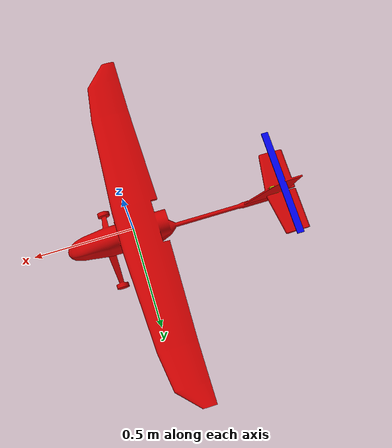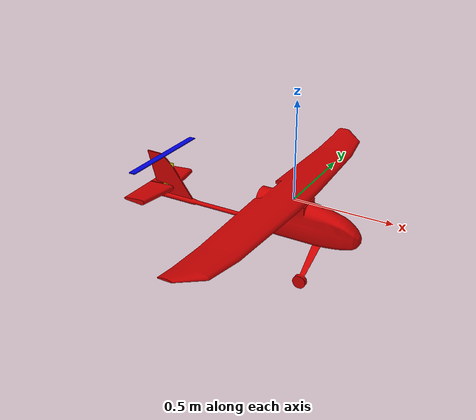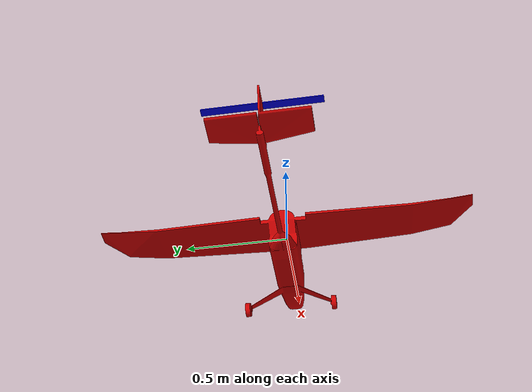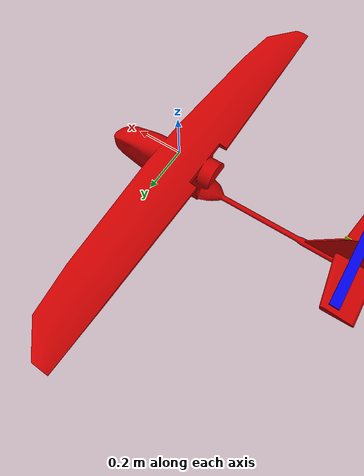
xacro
<?xml version="1.0" encoding="UTF-8"?>
<robot xmlns:xacro="http://www.ros.org/wiki/xacro"
  name="rarog">

  <!-- NOTE: xacro dont care about encoding, non ascii cause an error -->

  <!-- in Jade math.pi predefined -->
  <xacro:property name="add_control_surfaces" value="true" />
  <xacro:property name="kgcm_to_nm" value="0.0980665" />

  <link name="base_link">
    <!-- Robot base link: near CoG -->

    <visual>
      <origin xyz="0 0 -0.13" rpy="${pi} 0 0" />
      <geometry>
        <!-- XXX TODO Rarog uses Skywalker V6 1900, need to find right model -->
        <mesh filename="package://rarog_description/meshes/skywalker_2013.dae"/>
      </geometry>
      <material name="red"> <!-- GOES FASTA! -->
        <color rgba=".8 0 0 1" />
      </material>
    </visual>
  </link>

  <link name="fcu">
    <!-- FCU frame (mavros uses this link for most topics) -->
    <visual>
      <geometry>
        <box size=".085 .052 .02" />
      </geometry>
      <material name="dark-grey">
        <color rgba=".2 .2 .2 1" />
      </material>
    </visual>
  </link>

  <joint name="base_to_fcu" type="fixed">
    <parent link="base_link" />
    <child link="fcu" />
    <!-- FCU located under wing, on symmetry line,
         +5 cm X, -3 cm Y from base_link
         -->
    <origin xyz="0.05 0 -0.03" rpy="0 0 0" />
  </joint>

  <xacro:macro name="common_servo_limit">
      <!-- Lets say 30 deg, servo: 1.5 kg*cm (6 volt), 60 deg in 0.10 sec -->
      <limit lower="${radians(-30)}" upper="${radians(30)}" effort="${1.5 * kgcm_to_nm}" velocity="${radians(60. / 0.10)}" />
  </xacro:macro>

  <xacro:macro name="aileron" params="link *material *origin *mimic">
    <link name="${link}">
      <visual>
        <geometry>
          <!-- Aileron trapeze: 6 - 24.5 - 5 cm -->
          <box size=".055 .245 .005" />
        </geometry>
        <xacro:insert_block name="material" />
        <origin xyz="${-0.055/2} 0 0" rpy="0 0 0" />
      </visual>
    </link>

    <joint name="${link}" type="revolute">
      <parent link="base_link" />
      <child link="${link}" />
      <xacro:insert_block name="origin" />
      <axis xyz="0 1 0" />
      <xacro:common_servo_limit />
      <xacro:insert_block name="mimic" />
    </joint>
  </xacro:macro>

  <xacro:if value="${add_control_surfaces}">

    <!-- conventional ailerons controlled by one axis -->
    <link name="aileron_link" />
    <joint name="aileron" type="revolute">
      <parent link="base_link" />
      <child link="aileron_link" />
      <xacro:common_servo_limit />
    </joint>

    <!-- aileron location: 51 cm Y to 6-cm side, -5 cm on X -->
    <xacro:aileron link="aileron_left">
      <material name="red">
        <color rgba=".9 0 0 1" />
      </material>
      <origin xyz="-0.05 ${.51 + .245/2} .02" rpy="0 0 0" />
      <mimic joint="aileron" multiplier="-1" />
    </xacro:aileron>
    <xacro:aileron link="aileron_right">
      <material name="green">
        <color rgba="0 .9 0 1" />
      </material>
      <origin xyz="-0.05 ${-(.51 + .245/2)} .02" rpy="0 0 0" />
      <mimic joint="aileron" multiplier="1" />
    </xacro:aileron>

    <!-- Elevator (T-tail) -->
    <link name="elevator_link">
      <visual>
        <geometry>
          <box size=".035 .54 .005" />
        </geometry>
        <material name="blue">
          <color rgba="0 0 .9 1" />
        </material>
        <origin xyz="${-0.035/2} 0 0" rpy="0 0 0" />
      </visual>
    </link>
    <joint name="elevator" type="revolute">
      <parent link="base_link" />
      <child link="elevator_link" />
      <origin xyz="-0.75 0 .07" rpy="0 0 0" />
      <axis xyz="0 1 0" />
      <xacro:common_servo_limit />
    </joint>

    <!-- Rudder (T-tail) -->
    <link name="rudder_link">
      <visual>
        <geometry>
          <box size=".07 .005 .165" />
        </geometry>
        <material name="yellow">
          <color rgba=".9 .9 0 1" />
        </material>
        <origin xyz="${-0.07/2} 0 0" rpy="0 0 0" />
      </visual>
    </link>
    <joint name="rudder" type="revolute">
      <parent link="base_link" />
      <child link="rudder_link" />
      <origin xyz="-0.71 0 -0.05" rpy="0 0 0" />
      <axis xyz="0 0 1" />
      <xacro:common_servo_limit />
    </joint>

  </xacro:if>

  <!-- vim: set ts=2 sw=2 et : -->
</robot>
